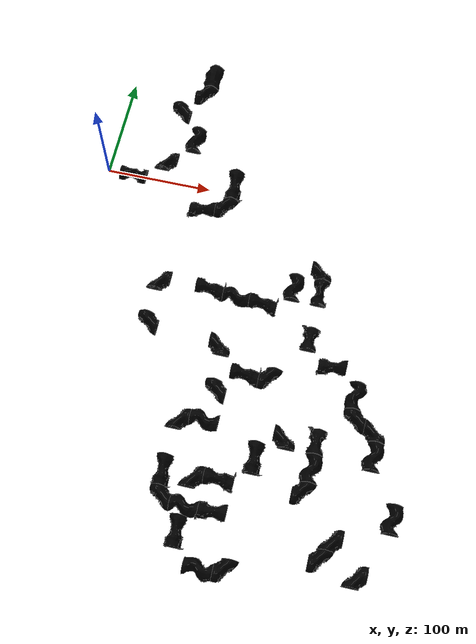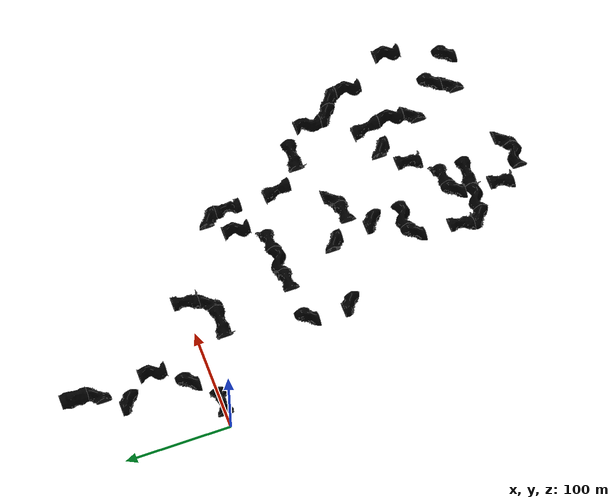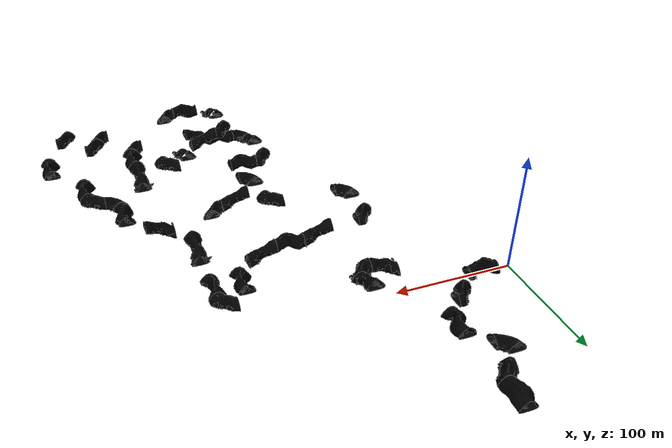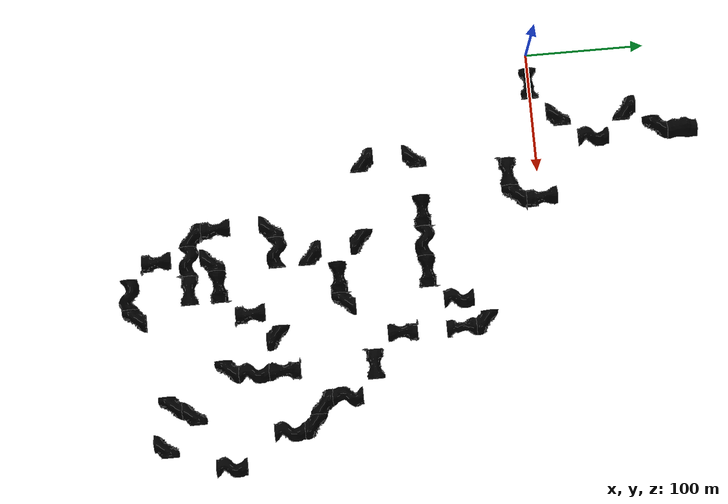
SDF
<sdf version="1.10">
 <world name="cave_circuit_02">
  <physics name="1ms" type="ode">
   <max_step_size>0.0040000000000000001</max_step_size>
   <real_time_factor>1</real_time_factor>
   <real_time_update_rate>1000</real_time_update_rate>
  </physics>
  <scene>
   <ambient>1 1 1 1</ambient>
   <background>1 1 1 1</background>
   <grid>false</grid>
   <origin_visual>false</origin_visual>
   <shadows>true</shadows>
  </scene>
  <plugin name="ignition::gazebo" filename="dummy">
   <level name="level0">
    <ref>tile_4</ref>
    <ref>cap_120</ref>
    <pose>25 -137.5 5.36225 0 0 0</pose>
    <geometry><box><size>93.75 725 150.725</size></box></geometry>
    <buffer>10</buffer>
   </level>
   <level name="level1">
    <ref>rescue_randy_1</ref>
    <pose>46.0079 -137.5 5.36225 0 0 0</pose>
    <geometry><box><size>93.75 725 150.725</size></box></geometry>
    <buffer>10</buffer>
   </level>
   <level name="level2">
    <ref>rope_1</ref>
    <pose>49.9811 -137.5 5.36225 0 0 0</pose>
    <geometry><box><size>93.75 725 150.725</size></box></geometry>
    <buffer>10</buffer>
   </level>
   <level name="level3">
    <ref>tile_2</ref>
    <ref>tile_14</ref>
    <ref>tile_20</ref>
    <ref>tile_40</ref>
    <ref>tile_45</ref>
    <ref>tile_60</ref>
    <pose>50 -137.5 5.36225 0 0 0</pose>
    <geometry><box><size>93.75 725 150.725</size></box></geometry>
    <buffer>10</buffer>
   </level>
   <level name="level4">
    <ref>tile_1</ref>
    <ref>tile_5</ref>
    <ref>tile_7</ref>
    <ref>tile_8</ref>
    <ref>tile_10</ref>
    <ref>tile_11</ref>
    <ref>tile_16</ref>
    <ref>tile_19</ref>
    <ref>tile_43</ref>
    <ref>tile_61</ref>
    <ref>tile_62</ref>
    <ref>tile_68</ref>
    <ref>cap_119</ref>
    <pose>75 -137.5 5.36225 0 0 0</pose>
    <geometry><box><size>93.75 725 150.725</size></box></geometry>
    <buffer>10</buffer>
   </level>
   <level name="level5">
    <ref>backpack_1</ref>
    <pose>79.2605 -137.5 5.36225 0 0 0</pose>
    <geometry><box><size>93.75 725 150.725</size></box></geometry>
    <buffer>10</buffer>
   </level>
   <level name="level6">
    <ref>rescue_randy_2</ref>
    <pose>98.4932 -137.5 5.36225 0 0 0</pose>
    <geometry><box><size>93.75 725 150.725</size></box></geometry>
    <buffer>10</buffer>
   </level>
   <level name="level7">
    <ref>tile_18</ref>
    <ref>tile_30</ref>
    <ref>tile_41</ref>
    <ref>tile_44</ref>
    <ref>cap_101</ref>
    <ref>tile_63</ref>
    <ref>tile_69</ref>
    <ref>tile_70</ref>
    <pose>100 -137.5 5.36225 0 0 0</pose>
    <geometry><box><size>93.75 725 150.725</size></box></geometry>
    <buffer>10</buffer>
   </level>
   <level name="level8">
    <ref>helmet_1</ref>
    <pose>113.364 -137.5 5.36225 0 0 0</pose>
    <geometry><box><size>93.75 725 150.725</size></box></geometry>
    <buffer>10</buffer>
   </level>
   <level name="level9">
    <ref>rope_2</ref>
    <pose>120.105 -137.5 5.36225 0 0 0</pose>
    <geometry><box><size>93.75 725 150.725</size></box></geometry>
    <buffer>10</buffer>
   </level>
   <level name="level10">
    <ref>cap_100</ref>
    <ref>tile_42</ref>
    <ref>tile_53</ref>
    <ref>tile_64</ref>
    <ref>tile_65</ref>
    <ref>tile_66</ref>
    <ref>tile_76</ref>
    <ref>tile_77</ref>
    <ref>tile_233</ref>
    <ref>tile_235</ref>
    <ref>tile_236</ref>
    <pose>125 -137.5 5.36225 0 0 0</pose>
    <geometry><box><size>93.75 725 150.725</size></box></geometry>
    <buffer>10</buffer>
   </level>
   <level name="level11">
    <ref>backpack_2</ref>
    <pose>131.134 -137.5 5.36225 0 0 0</pose>
    <geometry><box><size>93.75 725 150.725</size></box></geometry>
    <buffer>10</buffer>
   </level>
   <level name="level12">
    <ref>helmet_3</ref>
    <pose>148.017 -137.5 5.36225 0 0 0</pose>
    <geometry><box><size>93.75 725 150.725</size></box></geometry>
    <buffer>10</buffer>
   </level>
   <level name="level13">
    <ref>tile_21</ref>
    <ref>tile_51</ref>
    <ref>tile_52</ref>
    <ref>tile_78</ref>
    <ref>tile_79</ref>
    <ref>tile_80</ref>
    <ref>tile_95</ref>
    <ref>tile_230</ref>
    <ref>tile_234</ref>
    <ref>tile_238</ref>
    <pose>150 -137.5 5.36225 0 0 0</pose>
    <geometry><box><size>93.75 725 150.725</size></box></geometry>
    <buffer>10</buffer>
   </level>
   <level name="level14">
    <ref>phone_4</ref>
    <pose>151.461 -137.5 5.36225 0 0 0</pose>
    <geometry><box><size>93.75 725 150.725</size></box></geometry>
    <buffer>10</buffer>
   </level>
   <level name="level15">
    <ref>phone_2</ref>
    <pose>159.041 -137.5 5.36225 0 0 0</pose>
    <geometry><box><size>93.75 725 150.725</size></box></geometry>
    <buffer>10</buffer>
   </level>
   <level name="level16">
    <ref>tile_12</ref>
    <ref>tile_57</ref>
    <ref>tile_75</ref>
    <ref>tile_81</ref>
    <ref>tile_82</ref>
    <ref>tile_96</ref>
    <ref>cap_103</ref>
    <ref>tile_237</ref>
    <pose>175 -137.5 5.36225 0 0 0</pose>
    <geometry><box><size>93.75 725 150.725</size></box></geometry>
    <buffer>10</buffer>
   </level>
   <level name="level17">
    <ref>helmet_2</ref>
    <pose>197.497 -137.5 5.36225 0 0 0</pose>
    <geometry><box><size>93.75 725 150.725</size></box></geometry>
    <buffer>10</buffer>
   </level>
   <level name="level18">
    <ref>rescue_randy_4</ref>
    <pose>198.257 -137.5 5.36225 0 0 0</pose>
    <geometry><box><size>93.75 725 150.725</size></box></geometry>
    <buffer>10</buffer>
   </level>
   <level name="level19">
    <ref>tile_54</ref>
    <pose>199.853 -137.5 5.36225 0 0 0</pose>
    <geometry><box><size>93.75 725 150.725</size></box></geometry>
    <buffer>10</buffer>
   </level>
   <level name="level20">
    <ref>tile_13</ref>
    <ref>tile_23</ref>
    <ref>tile_29</ref>
    <ref>tile_55</ref>
    <ref>tile_56</ref>
    <ref>cap_102</ref>
    <ref>tile_73</ref>
    <ref>tile_74</ref>
    <ref>tile_83</ref>
    <ref>tile_84</ref>
    <ref>tile_93</ref>
    <ref>tile_94</ref>
    <pose>200 -137.5 5.36225 0 0 0</pose>
    <geometry><box><size>93.75 725 150.725</size></box></geometry>
    <buffer>10</buffer>
   </level>
   <level name="level21">
    <ref>rope_3</ref>
    <pose>200.187 -137.5 5.36225 0 0 0</pose>
    <geometry><box><size>93.75 725 150.725</size></box></geometry>
    <buffer>10</buffer>
   </level>
   <level name="level22">
    <ref>backpack_3</ref>
    <pose>207.649 -137.5 5.36225 0 0 0</pose>
    <geometry><box><size>93.75 725 150.725</size></box></geometry>
    <buffer>10</buffer>
   </level>
   <level name="level23">
    <ref>tile_24</ref>
    <ref>tile_67</ref>
    <ref>tile_71</ref>
    <ref>tile_72</ref>
    <ref>tile_85</ref>
    <ref>tile_87</ref>
    <ref>tile_89</ref>
    <ref>tile_91</ref>
    <ref>tile_102</ref>
    <ref>tile_229</ref>
    <pose>225 -137.5 5.36225 0 0 0</pose>
    <geometry><box><size>93.75 725 150.725</size></box></geometry>
    <buffer>10</buffer>
   </level>
   <level name="level24">
    <ref>phone_1</ref>
    <pose>228.47 -137.5 5.36225 0 0 0</pose>
    <geometry><box><size>93.75 725 150.725</size></box></geometry>
    <buffer>10</buffer>
   </level>
   <level name="level25">
    <ref>rescue_randy_3</ref>
    <pose>243.97 -137.5 5.36225 0 0 0</pose>
    <geometry><box><size>93.75 725 150.725</size></box></geometry>
    <buffer>10</buffer>
   </level>
   <level name="level26">
    <ref>helmet_4</ref>
    <pose>247.328 -137.5 5.36225 0 0 0</pose>
    <geometry><box><size>93.75 725 150.725</size></box></geometry>
    <buffer>10</buffer>
   </level>
   <level name="level27">
    <ref>backpack_4</ref>
    <pose>249.686 -137.5 5.36225 0 0 0</pose>
    <geometry><box><size>93.75 725 150.725</size></box></geometry>
    <buffer>10</buffer>
   </level>
   <level name="level28">
    <ref>tile_26</ref>
    <ref>tile_86</ref>
    <ref>tile_88</ref>
    <ref>tile_90</ref>
    <ref>tile_92</ref>
    <ref>tile_103</ref>
    <ref>cap_106</ref>
    <pose>250 -137.5 5.36225 0 0 0</pose>
    <geometry><box><size>93.75 725 150.725</size></box></geometry>
    <buffer>10</buffer>
   </level>
   <level name="level29">
    <ref>tile_50</ref>
    <ref>tile_97</ref>
    <ref>tile_98</ref>
    <ref>tile_105</ref>
    <ref>tile_106</ref>
    <pose>275 -137.5 5.36225 0 0 0</pose>
    <geometry><box><size>93.75 725 150.725</size></box></geometry>
    <buffer>10</buffer>
   </level>
   <level name="level30">
    <ref>tile_31</ref>
    <ref>tile_32</ref>
    <ref>cap_105</ref>
    <ref>tile_38</ref>
    <ref>tile_39</ref>
    <ref>tile_99</ref>
    <ref>tile_100</ref>
    <ref>tile_101</ref>
    <ref>tile_104</ref>
    <ref>tile_107</ref>
    <ref>tile_111</ref>
    <pose>300 -137.5 5.36225 0 0 0</pose>
    <geometry><box><size>93.75 725 150.725</size></box></geometry>
    <buffer>10</buffer>
   </level>
   <level name="level31">
    <ref>helmet_5</ref>
    <pose>304.779 -137.5 5.36225 0 0 0</pose>
    <geometry><box><size>93.75 725 150.725</size></box></geometry>
    <buffer>10</buffer>
   </level>
   <level name="level32">
    <ref>tile_108</ref>
    <ref>tile_109</ref>
    <ref>tile_110</ref>
    <ref>tile_113</ref>
    <ref>tile_114</ref>
    <pose>325 -137.5 5.36225 0 0 0</pose>
    <geometry><box><size>93.75 725 150.725</size></box></geometry>
    <buffer>10</buffer>
   </level>
   <level name="level33">
    <ref>phone_3</ref>
    <pose>331.114 -137.5 5.36225 0 0 0</pose>
    <geometry><box><size>93.75 725 150.725</size></box></geometry>
    <buffer>10</buffer>
   </level>
   <level name="level34">
    <ref>cap_104</ref>
    <pose>350 -137.5 5.36225 0 0 0</pose>
    <geometry><box><size>93.75 725 150.725</size></box></geometry>
    <buffer>10</buffer>
   </level>
   <level name="level35">
    <ref>cap_105</ref>
    <pose>187.5 -450 5.36225 0 0 0</pose>
    <geometry><box><size>425 93.75 150.725</size></box></geometry>
    <buffer>10</buffer>
   </level>
   <level name="level36">
    <ref>tile_32</ref>
    <pose>187.5 -425 5.36225 0 0 0</pose>
    <geometry><box><size>425 93.75 150.725</size></box></geometry>
    <buffer>10</buffer>
   </level>
   <level name="level37">
    <ref>tile_31</ref>
    <pose>187.5 -400 5.36225 0 0 0</pose>
    <geometry><box><size>425 93.75 150.725</size></box></geometry>
    <buffer>10</buffer>
   </level>
   <level name="level38">
    <ref>helmet_5</ref>
    <pose>187.5 -398.248 5.36225 0 0 0</pose>
    <geometry><box><size>425 93.75 150.725</size></box></geometry>
    <buffer>10</buffer>
   </level>
   <level name="level39">
    <ref>tile_38</ref>
    <pose>187.5 -375 5.36225 0 0 0</pose>
    <geometry><box><size>425 93.75 150.725</size></box></geometry>
    <buffer>10</buffer>
   </level>
   <level name="level40">
    <ref>phone_4</ref>
    <pose>187.5 -353.205 5.36225 0 0 0</pose>
    <geometry><box><size>425 93.75 150.725</size></box></geometry>
    <buffer>10</buffer>
   </level>
   <level name="level41">
    <ref>tile_39</ref>
    <ref>tile_51</ref>
    <ref>tile_55</ref>
    <ref>tile_57</ref>
    <ref>cap_106</ref>
    <pose>187.5 -350 5.36225 0 0 0</pose>
    <geometry><box><size>425 93.75 150.725</size></box></geometry>
    <buffer>10</buffer>
   </level>
   <level name="level42">
    <ref>backpack_4</ref>
    <pose>187.5 -339.741 5.36225 0 0 0</pose>
    <geometry><box><size>425 93.75 150.725</size></box></geometry>
    <buffer>10</buffer>
   </level>
   <level name="level43">
    <ref>tile_56</ref>
    <ref>tile_102</ref>
    <ref>tile_103</ref>
    <ref>tile_106</ref>
    <ref>tile_110</ref>
    <ref>tile_111</ref>
    <ref>tile_230</ref>
    <pose>187.5 -325 5.36225 0 0 0</pose>
    <geometry><box><size>425 93.75 150.725</size></box></geometry>
    <buffer>10</buffer>
   </level>
   <level name="level44">
    <ref>rope_3</ref>
    <pose>187.5 -318.128 5.36225 0 0 0</pose>
    <geometry><box><size>425 93.75 150.725</size></box></geometry>
    <buffer>10</buffer>
   </level>
   <level name="level45">
    <ref>tile_54</ref>
    <pose>187.5 -300.593 5.36225 0 0 0</pose>
    <geometry><box><size>425 93.75 150.725</size></box></geometry>
    <buffer>10</buffer>
   </level>
   <level name="level46">
    <ref>tile_52</ref>
    <ref>tile_53</ref>
    <ref>tile_104</ref>
    <ref>tile_105</ref>
    <ref>tile_113</ref>
    <ref>tile_237</ref>
    <ref>tile_238</ref>
    <pose>187.5 -300 5.36225 0 0 0</pose>
    <geometry><box><size>425 93.75 150.725</size></box></geometry>
    <buffer>10</buffer>
   </level>
   <level name="level47">
    <ref>rescue_randy_4</ref>
    <pose>187.5 -278.819 5.36225 0 0 0</pose>
    <geometry><box><size>425 93.75 150.725</size></box></geometry>
    <buffer>10</buffer>
   </level>
   <level name="level48">
    <ref>tile_90</ref>
    <ref>tile_91</ref>
    <ref>tile_94</ref>
    <ref>tile_95</ref>
    <ref>tile_96</ref>
    <ref>tile_101</ref>
    <ref>tile_114</ref>
    <ref>tile_236</ref>
    <pose>187.5 -275 5.36225 0 0 0</pose>
    <geometry><box><size>425 93.75 150.725</size></box></geometry>
    <buffer>10</buffer>
   </level>
   <level name="level49">
    <ref>tile_89</ref>
    <ref>tile_92</ref>
    <ref>tile_93</ref>
    <ref>tile_107</ref>
    <ref>tile_108</ref>
    <ref>tile_235</ref>
    <pose>187.5 -250 5.36225 0 0 0</pose>
    <geometry><box><size>425 93.75 150.725</size></box></geometry>
    <buffer>10</buffer>
   </level>
   <level name="level50">
    <ref>tile_82</ref>
    <ref>tile_83</ref>
    <ref>tile_85</ref>
    <ref>tile_88</ref>
    <ref>cap_103</ref>
    <ref>tile_100</ref>
    <ref>tile_109</ref>
    <ref>cap_104</ref>
    <ref>tile_233</ref>
    <ref>tile_234</ref>
    <pose>187.5 -225 5.36225 0 0 0</pose>
    <geometry><box><size>425 93.75 150.725</size></box></geometry>
    <buffer>10</buffer>
   </level>
   <level name="level51">
    <ref>phone_3</ref>
    <pose>187.5 -223.715 5.36225 0 0 0</pose>
    <geometry><box><size>425 93.75 150.725</size></box></geometry>
    <buffer>10</buffer>
   </level>
   <level name="level52">
    <ref>helmet_3</ref>
    <pose>187.5 -219.996 5.36225 0 0 0</pose>
    <geometry><box><size>425 93.75 150.725</size></box></geometry>
    <buffer>10</buffer>
   </level>
   <level name="level53">
    <ref>helmet_4</ref>
    <pose>187.5 -203.254 5.36225 0 0 0</pose>
    <geometry><box><size>425 93.75 150.725</size></box></geometry>
    <buffer>10</buffer>
   </level>
   <level name="level54">
    <ref>tile_80</ref>
    <ref>tile_81</ref>
    <ref>tile_84</ref>
    <ref>tile_86</ref>
    <ref>tile_87</ref>
    <ref>tile_98</ref>
    <ref>tile_99</ref>
    <pose>187.5 -200 5.36225 0 0 0</pose>
    <geometry><box><size>425 93.75 150.725</size></box></geometry>
    <buffer>10</buffer>
   </level>
   <level name="level55">
    <ref>phone_2</ref>
    <pose>187.5 -193.451 5.36225 0 0 0</pose>
    <geometry><box><size>425 93.75 150.725</size></box></geometry>
    <buffer>10</buffer>
   </level>
   <level name="level56">
    <ref>tile_74</ref>
    <ref>tile_75</ref>
    <ref>tile_79</ref>
    <ref>tile_97</ref>
    <pose>187.5 -175 5.36225 0 0 0</pose>
    <geometry><box><size>425 93.75 150.725</size></box></geometry>
    <buffer>10</buffer>
   </level>
   <level name="level57">
    <ref>backpack_3</ref>
    <pose>187.5 -156.007 5.36225 0 0 0</pose>
    <geometry><box><size>425 93.75 150.725</size></box></geometry>
    <buffer>10</buffer>
   </level>
   <level name="level58">
    <ref>tile_16</ref>
    <ref>tile_26</ref>
    <ref>tile_50</ref>
    <ref>tile_69</ref>
    <ref>tile_72</ref>
    <ref>tile_73</ref>
    <ref>tile_77</ref>
    <ref>tile_78</ref>
    <pose>187.5 -150 5.36225 0 0 0</pose>
    <geometry><box><size>425 93.75 150.725</size></box></geometry>
    <buffer>10</buffer>
   </level>
   <level name="level59">
    <ref>rescue_randy_3</ref>
    <pose>187.5 -144.242 5.36225 0 0 0</pose>
    <geometry><box><size>425 93.75 150.725</size></box></geometry>
    <buffer>10</buffer>
   </level>
   <level name="level60">
    <ref>tile_68</ref>
    <ref>tile_70</ref>
    <ref>tile_76</ref>
    <ref>tile_229</ref>
    <pose>187.5 -125 5.36225 0 0 0</pose>
    <geometry><box><size>425 93.75 150.725</size></box></geometry>
    <buffer>10</buffer>
   </level>
   <level name="level61">
    <ref>rescue_randy_2</ref>
    <pose>187.5 -120.989 5.36225 0 0 0</pose>
    <geometry><box><size>425 93.75 150.725</size></box></geometry>
    <buffer>10</buffer>
   </level>
   <level name="level62">
    <ref>tile_12</ref>
    <ref>tile_18</ref>
    <ref>tile_21</ref>
    <ref>tile_23</ref>
    <ref>tile_42</ref>
    <ref>tile_43</ref>
    <ref>tile_71</ref>
    <pose>187.5 -100 5.36225 0 0 0</pose>
    <geometry><box><size>425 93.75 150.725</size></box></geometry>
    <buffer>10</buffer>
   </level>
   <level name="level63">
    <ref>phone_1</ref>
    <pose>187.5 -99.1503 5.36225 0 0 0</pose>
    <geometry><box><size>425 93.75 150.725</size></box></geometry>
    <buffer>10</buffer>
   </level>
   <level name="level64">
    <ref>backpack_2</ref>
    <pose>187.5 -94.5749 5.36225 0 0 0</pose>
    <geometry><box><size>425 93.75 150.725</size></box></geometry>
    <buffer>10</buffer>
   </level>
   <level name="level65">
    <ref>tile_24</ref>
    <ref>tile_29</ref>
    <ref>tile_44</ref>
    <pose>187.5 -75 5.36225 0 0 0</pose>
    <geometry><box><size>425 93.75 150.725</size></box></geometry>
    <buffer>10</buffer>
   </level>
   <level name="level66">
    <ref>tile_13</ref>
    <ref>tile_14</ref>
    <ref>tile_62</ref>
    <ref>tile_63</ref>
    <ref>tile_67</ref>
    <pose>187.5 -50 5.36225 0 0 0</pose>
    <geometry><box><size>425 93.75 150.725</size></box></geometry>
    <buffer>10</buffer>
   </level>
   <level name="level67">
    <ref>rescue_randy_1</ref>
    <pose>187.5 -48.2151 5.36225 0 0 0</pose>
    <geometry><box><size>425 93.75 150.725</size></box></geometry>
    <buffer>10</buffer>
   </level>
   <level name="level68">
    <ref>helmet_2</ref>
    <pose>187.5 -43.9886 5.36225 0 0 0</pose>
    <geometry><box><size>425 93.75 150.725</size></box></geometry>
    <buffer>10</buffer>
   </level>
   <level name="level69">
    <ref>tile_41</ref>
    <ref>tile_45</ref>
    <ref>tile_61</ref>
    <ref>tile_64</ref>
    <ref>cap_102</ref>
    <pose>187.5 -25 5.36225 0 0 0</pose>
    <geometry><box><size>425 93.75 150.725</size></box></geometry>
    <buffer>10</buffer>
   </level>
   <level name="level70">
    <ref>backpack_1</ref>
    <pose>187.5 -3.34871 5.36225 0 0 0</pose>
    <geometry><box><size>425 93.75 150.725</size></box></geometry>
    <buffer>10</buffer>
   </level>
   <level name="level71">
    <ref>tile_4</ref>
    <ref>tile_19</ref>
    <ref>tile_40</ref>
    <ref>tile_66</ref>
    <pose>187.5 0 5.36225 0 0 0</pose>
    <geometry><box><size>425 93.75 150.725</size></box></geometry>
    <buffer>10</buffer>
   </level>
   <level name="level72">
    <ref>rope_2</ref>
    <pose>187.5 22.381 5.36225 0 0 0</pose>
    <geometry><box><size>425 93.75 150.725</size></box></geometry>
    <buffer>10</buffer>
   </level>
   <level name="level73">
    <ref>tile_1</ref>
    <ref>tile_2</ref>
    <ref>cap_101</ref>
    <ref>tile_65</ref>
    <pose>187.5 25 5.36225 0 0 0</pose>
    <geometry><box><size>425 93.75 150.725</size></box></geometry>
    <buffer>10</buffer>
   </level>
   <level name="level74">
    <ref>tile_11</ref>
    <pose>187.5 50 5.36225 0 0 0</pose>
    <geometry><box><size>425 93.75 150.725</size></box></geometry>
    <buffer>10</buffer>
   </level>
   <level name="level75">
    <ref>tile_7</ref>
    <ref>tile_60</ref>
    <pose>187.5 75 5.36225 0 0 0</pose>
    <geometry><box><size>425 93.75 150.725</size></box></geometry>
    <buffer>10</buffer>
   </level>
   <level name="level76">
    <ref>tile_10</ref>
    <ref>tile_20</ref>
    <ref>cap_120</ref>
    <pose>187.5 100 5.36225 0 0 0</pose>
    <geometry><box><size>425 93.75 150.725</size></box></geometry>
    <buffer>10</buffer>
   </level>
   <level name="level77">
    <ref>rope_1</ref>
    <pose>187.5 101.591 5.36225 0 0 0</pose>
    <geometry><box><size>425 93.75 150.725</size></box></geometry>
    <buffer>10</buffer>
   </level>
   <level name="level78">
    <ref>tile_5</ref>
    <pose>187.5 125 5.36225 0 0 0</pose>
    <geometry><box><size>425 93.75 150.725</size></box></geometry>
    <buffer>10</buffer>
   </level>
   <level name="level79">
    <ref>helmet_1</ref>
    <pose>187.5 149.606 5.36225 0 0 0</pose>
    <geometry><box><size>425 93.75 150.725</size></box></geometry>
    <buffer>10</buffer>
   </level>
   <level name="level80">
    <ref>cap_100</ref>
    <ref>tile_8</ref>
    <ref>tile_30</ref>
    <pose>187.5 150 5.36225 0 0 0</pose>
    <geometry><box><size>425 93.75 150.725</size></box></geometry>
    <buffer>10</buffer>
   </level>
   <level name="level81">
    <ref>cap_119</ref>
    <pose>187.5 175 5.36225 0 0 0</pose>
    <geometry><box><size>425 93.75 150.725</size></box></geometry>
    <buffer>10</buffer>
   </level>
  </plugin>
  <gravity>0 0 -9.8000000000000007</gravity>
  <magnetic_field>5.5644999999999998e-06 2.2875799999999999e-05 -4.2388400000000002e-05</magnetic_field>
  <atmosphere type="adiabatic"/>
  <include>
   <uri>https://fuel.ignitionrobotics.org/1.0/OpenRobotics/models/Cave Corner 02 Lights Type B</uri>
   <name>tile_2</name>
   <pose>50 25 0 0 0 3.1415899999999999</pose>
  </include>
  <include>
   <uri>https://fuel.ignitionrobotics.org/1.0/OpenRobotics/models/Cave Straight 02 Lights Type B</uri>
   <name>tile_4</name>
   <pose>25 0 0 0 0 -1.5708000000000006</pose>
  </include>
  <include>
   <uri>https://fuel.ignitionrobotics.org/1.0/OpenRobotics/models/Cave Straight 04 Type B</uri>
   <name>tile_5</name>
   <pose>75 125 0 0 0 0</pose>
  </include>
  <include>
   <uri>https://fuel.ignitionrobotics.org/1.0/OpenRobotics/models/Cave Corner 02 Type B</uri>
   <name>tile_10</name>
   <pose>75 100 0 0 0 -1.7484600000000098e-07</pose>
  </include>
  <include>
   <uri>https://fuel.ignitionrobotics.org/1.0/OpenRobotics/models/Cave Straight 03 Type B</uri>
   <name>tile_11</name>
   <pose>75 50 0 0 0 0</pose>
  </include>
  <include>
   <uri>https://fuel.ignitionrobotics.org/1.0/OpenRobotics/models/Cave Elevation Type B</uri>
   <name>tile_12</name>
   <pose>175 -100 -20 0 0 -1.5708000000000006</pose>
  </include>
  <include>
   <uri>https://fuel.ignitionrobotics.org/1.0/OpenRobotics/models/Cave Corner 02 Type B</uri>
   <name>tile_16</name>
   <pose>75 -150 0 0 0 -1.5708000000000006</pose>
  </include>
  <include>
   <uri>https://fuel.ignitionrobotics.org/1.0/OpenRobotics/models/Cave Straight 03 Type B</uri>
   <name>tile_21</name>
   <pose>150 -100 -10 0 0 -1.5708000000000006</pose>
  </include>
  <include>
   <uri>https://fuel.ignitionrobotics.org/1.0/OpenRobotics/models/Cave Straight 02 Type B</uri>
   <name>tile_24</name>
   <pose>225 -75 -20 0 0 3.1415899999999999</pose>
  </include>
  <include>
   <uri>https://fuel.ignitionrobotics.org/1.0/OpenRobotics/models/Cave Elevation Lights Type B</uri>
   <name>tile_26</name>
   <pose>250 -150 -10 0 0 1.5708000000000006</pose>
  </include>
  <include>
   <uri>https://fuel.ignitionrobotics.org/1.0/OpenRobotics/models/Cave Straight 03 Type B</uri>
   <name>tile_29</name>
   <pose>200 -75 -20 0 0 -1.7484600000000098e-07</pose>
  </include>
  <include>
   <uri>https://fuel.ignitionrobotics.org/1.0/OpenRobotics/models/Cave Elevation Lights Type B</uri>
   <name>tile_41</name>
   <pose>100 -25 0 0 0 1.5708000000000006</pose>
  </include>
  <include>
   <uri>https://fuel.ignitionrobotics.org/1.0/OpenRobotics/models/Cave Elevation Type B</uri>
   <name>tile_42</name>
   <pose>125 -100 -10 0 0 -1.5708000000000006</pose>
  </include>
  <include>
   <uri>https://fuel.ignitionrobotics.org/1.0/OpenRobotics/models/Cave Corner 02 Lights Type B</uri>
   <name>tile_43</name>
   <pose>75 -100 0 0 0 3.1415899999999999</pose>
  </include>
  <include>
   <uri>https://fuel.ignitionrobotics.org/1.0/OpenRobotics/models/Cave Corner 02 Type B</uri>
   <name>tile_53</name>
   <pose>125 -300 -10 0 0 -1.5708000000000006</pose>
  </include>
  <include>
   <uri>https://fuel.ignitionrobotics.org/1.0/OpenRobotics/models/Cave Corner 02 Lights Type B</uri>
   <name>tile_55</name>
   <pose>200 -350 0 0 0 -3.4969100000000723e-07</pose>
  </include>
  <include>
   <uri>https://fuel.ignitionrobotics.org/1.0/OpenRobotics/models/Cave Straight 03 Type B</uri>
   <name>tile_57</name>
   <pose>175 -350 0 0 0 1.5708000000000006</pose>
  </include>
  <include>
   <uri>https://fuel.ignitionrobotics.org/1.0/OpenRobotics/models/Cave Corner 02 Type B</uri>
   <name>tile_60</name>
   <pose>50 75 0 0 0 -1.5708000000000006</pose>
  </include>
  <include>
   <uri>https://fuel.ignitionrobotics.org/1.0/OpenRobotics/models/Cave Corner 02 Lights Type B</uri>
   <name>tile_64</name>
   <pose>125 -25 10 0 0 -3.4969100000000723e-07</pose>
  </include>
  <include>
   <uri>https://fuel.ignitionrobotics.org/1.0/OpenRobotics/models/Cave Elevation Type B</uri>
   <name>tile_66</name>
   <pose>125 0 10 0 0 -3.1415899999999999</pose>
  </include>
  <include>
   <uri>https://fuel.ignitionrobotics.org/1.0/OpenRobotics/models/Cave Corner 02 Type B</uri>
   <name>tile_67</name>
   <pose>225 -50 -20 0 0 1.5708000000000006</pose>
  </include>
  <include>
   <uri>https://fuel.ignitionrobotics.org/1.0/OpenRobotics/models/Cave Corner 02 Lights Type B</uri>
   <name>tile_74</name>
   <pose>200 -175 -10 0 0 -3.4969100000000723e-07</pose>
  </include>
  <include>
   <uri>https://fuel.ignitionrobotics.org/1.0/OpenRobotics/models/Cave Elevation Lights Type B</uri>
   <name>tile_75</name>
   <pose>175 -175 -10 0 0 -1.5708000000000006</pose>
  </include>
  <include>
   <uri>https://fuel.ignitionrobotics.org/1.0/OpenRobotics/models/Cave Corner 02 Lights Type B</uri>
   <name>tile_78</name>
   <pose>150 -150 0 0 0 1.5708000000000006</pose>
  </include>
  <include>
   <uri>https://fuel.ignitionrobotics.org/1.0/OpenRobotics/models/Cave Corner 02 Type B</uri>
   <name>tile_80</name>
   <pose>150 -200 0 0 0 -1.5708000000000006</pose>
  </include>
  <include>
   <uri>https://fuel.ignitionrobotics.org/1.0/OpenRobotics/models/Cave Corner 02 Lights Type B</uri>
   <name>tile_85</name>
   <pose>225 -225 10 0 0 1.5708000000000006</pose>
  </include>
  <include>
   <uri>https://fuel.ignitionrobotics.org/1.0/OpenRobotics/models/Cave Elevation Lights Type B</uri>
   <name>tile_88</name>
   <pose>250 -225 0 0 0 -3.4969100000000723e-07</pose>
  </include>
  <include>
   <uri>https://fuel.ignitionrobotics.org/1.0/OpenRobotics/models/Cave Corner 02 Lights Type B</uri>
   <name>tile_90</name>
   <pose>250 -275 10 0 0 -3.4969100000000723e-07</pose>
  </include>
  <include>
   <uri>https://fuel.ignitionrobotics.org/1.0/OpenRobotics/models/Cave Straight 03 Type B</uri>
   <name>tile_92</name>
   <pose>250 -250 10 0 0 0</pose>
  </include>
  <include>
   <uri>https://fuel.ignitionrobotics.org/1.0/OpenRobotics/models/Cave Elevation Type B</uri>
   <name>tile_93</name>
   <pose>200 -250 0 0 0 3.1415899999999999</pose>
  </include>
  <include>
   <uri>https://fuel.ignitionrobotics.org/1.0/OpenRobotics/models/Cave Corner 02 Type B</uri>
   <name>tile_95</name>
   <pose>150 -275 10 0 0 3.1415899999999999</pose>
  </include>
  <include>
   <uri>https://fuel.ignitionrobotics.org/1.0/OpenRobotics/models/Cave Elevation Type B</uri>
   <name>tile_96</name>
   <pose>175 -275 0 0 0 -1.5708000000000006</pose>
  </include>
  <include>
   <uri>https://fuel.ignitionrobotics.org/1.0/OpenRobotics/models/Cave Straight 03 Type B</uri>
   <name>tile_97</name>
   <pose>275 -175 0 0 0 3.1415899999999999</pose>
  </include>
  <include>
   <uri>https://fuel.ignitionrobotics.org/1.0/OpenRobotics/models/Cave Corner 02 Type B</uri>
   <name>tile_98</name>
   <pose>275 -200 0 0 0 -1.5708000000000006</pose>
  </include>
  <include>
   <uri>https://fuel.ignitionrobotics.org/1.0/OpenRobotics/models/Cave Corner 02 Type B</uri>
   <name>tile_99</name>
   <pose>300 -200 0 0 0 1.5708000000000006</pose>
  </include>
  <include>
   <uri>https://fuel.ignitionrobotics.org/1.0/OpenRobotics/models/Cave Straight 03 Type B</uri>
   <name>tile_100</name>
   <pose>300 -225 0 0 0 0</pose>
  </include>
  <include>
   <uri>https://fuel.ignitionrobotics.org/1.0/OpenRobotics/models/Cave Corner 02 Lights Type B</uri>
   <name>tile_105</name>
   <pose>275 -300 0 0 0 3.1415899999999999</pose>
  </include>
  <include>
   <uri>https://fuel.ignitionrobotics.org/1.0/OpenRobotics/models/Cave Corner 02 Lights Type B</uri>
   <name>tile_106</name>
   <pose>275 -325 0 0 0 0</pose>
  </include>
  <include>
   <uri>https://fuel.ignitionrobotics.org/1.0/OpenRobotics/models/Cave Corner 02 Lights Type B</uri>
   <name>tile_111</name>
   <pose>300 -325 0 0 0 3.1415899999999999</pose>
  </include>
  <include>
   <uri>https://fuel.ignitionrobotics.org/1.0/OpenRobotics/models/Cave Straight 03 Type B</uri>
   <name>tile_114</name>
   <pose>325 -275 0 0 0 0</pose>
  </include>
  <include>
   <uri>https://fuel.ignitionrobotics.org/1.0/OpenRobotics/models/Cave Elevation Type B</uri>
   <name>tile_229</name>
   <pose>225 -125 -20 0 0 -3.4969100000000723e-07</pose>
  </include>
  <include>
   <uri>https://fuel.ignitionrobotics.org/1.0/OpenRobotics/models/Cave Elevation Type B</uri>
   <name>tile_230</name>
   <pose>150 -325 0 0 0 3.1415899999999999</pose>
  </include>
  <include>
   <uri>https://fuel.ignitionrobotics.org/1.0/OpenRobotics/models/Cave Corner 02 Type B</uri>
   <name>tile_233</name>
   <pose>125 -225 0 0 0 3.1415899999999999</pose>
  </include>
  <include>
   <uri>https://fuel.ignitionrobotics.org/1.0/OpenRobotics/models/Cave Straight 03 Type B</uri>
   <name>tile_234</name>
   <pose>150 -225 0 0 0 -1.5708000000000006</pose>
  </include>
  <include>
   <uri>https://fuel.ignitionrobotics.org/1.0/OpenRobotics/models/Cave Elevation Type B</uri>
   <name>tile_236</name>
   <pose>125 -275 -10 0 0 3.1415899999999999</pose>
  </include>
  <include>
   <uri>https://fuel.ignitionrobotics.org/1.0/OpenRobotics/models/Cave Elevation Type B</uri>
   <name>tile_237</name>
   <pose>175 -300 -10 0 0 1.5708000000000006</pose>
  </include>
  <include>
   <uri>https://fuel.ignitionrobotics.org/1.0/OpenRobotics/models/Cave Straight 03 Type B</uri>
   <name>tile_238</name>
   <pose>150 -300 -10 0 0 -1.5708000000000006</pose>
  </include>
  <light name="sun" type="directional">
   <pose>0 0 10 0 0 0</pose>
   <intensity>1</intensity>
   <direction>-0.5 0.10000000000000001 -0.90000000000000002</direction>
   <diffuse>0.800000012 0.800000012 0.800000012 1</diffuse>
   <specular>0.800000012 0.800000012 0.800000012 1</specular>
   <attenuation>
    <range>1000</range>
    <linear>0.01</linear>
    <constant>0.90000000000000002</constant>
    <quadratic>0.001</quadratic>
   </attenuation>
   <spot><inner_angle>0</inner_angle><outer_angle>0</outer_angle><falloff>0</falloff></spot>
  </light>
 </world>
</sdf>

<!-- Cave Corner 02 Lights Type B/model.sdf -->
<sdf version="1.6">
  <model name="Cave Corner 02 Lights Type B">
    <include>
      <name>cave_corner_02</name>
      <uri>model://Cave Corner 02 Type B</uri>
    </include>
    <static>true</static>
    <link name="lights">
      <light name="spot_light1" type="spot">
        <pose>-2 6.0 3.5 0 0 0</pose>
        <diffuse>0 0 0 1</diffuse>
        <specular>0 0 0 1</specular>
        <attenuation>
          <range>20</range>
          <linear>0.2</linear>
          <constant>0.5</constant>
          <quadratic>0.02</quadratic>
        </attenuation>
        <spot>
          <inner_angle>2.0</inner_angle>
          <outer_angle>3.1</outer_angle>
          <falloff>1.0</falloff>
        </spot>
        <cast_shadows>false</cast_shadows>
      </light>

      <light name="spot_light2" type="spot">
        <pose>-6.5 -.25 4.5 0 0 0</pose>
        <diffuse>0 0 0 1</diffuse>
        <specular>0 0 0 1</specular>
        <attenuation>
          <range>20</range>
          <linear>0.2</linear>
          <constant>0.5</constant>
          <quadratic>0.02</quadratic>
        </attenuation>
        <spot>
          <inner_angle>2.0</inner_angle>
          <outer_angle>3.1</outer_angle>
          <falloff>1.0</falloff>
        </spot>
        <cast_shadows>false</cast_shadows>
      </light>
    </link>
  </model>
</sdf>

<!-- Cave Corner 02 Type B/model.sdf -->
<sdf version="1.6">
  <model name="Cave Corner 02 Type B">
    <static>true</static>
    <link name="base_link">
      <collision name="collision">
        <pose>0 0 0 0 0 0</pose>
        <geometry>
          <mesh>
            <uri>model://cave_corner_02/meshes/cavecorner02.dae</uri>
            <scale>1.005 1.005 1.0</scale>
          </mesh>
        </geometry>
      </collision>
      <visual name="CaveWall_visual">
        <geometry>
          <mesh>
            <uri>model://cave_corner_02/meshes/cavecorner02.dae</uri>
            <submesh>
              <name>CaveWall</name>
              <center>false</center>
            </submesh>
            <scale>1.005 1.005 1.0</scale>
          </mesh>
        </geometry>
        <material>
          <diffuse>0 0 0 1</diffuse>
          <specular>0 0 0 1</specular>
          <pbr>
            <metal>
              <albedo_map>model://cave_corner_02/materials/textures/CaveWall_Albedo.png</albedo_map>
              <normal_map>model://cave_corner_02/materials/textures/CaveWall_Normal.png</normal_map>
              <roughness_map>model://cave_corner_02/materials/textures/CaveWall_Roughness.png</roughness_map>
            </metal>
          </pbr>

          <script>
            <uri>model://cave_corner_02/materials/scripts/</uri>
            <uri>model://cave_corner_02/materials/textures/</uri>
            <name>CaveTile/CaveWall_Diffuse</name>
          </script>
        </material>
      </visual>
      <visual name="StriatedRock_visual">
        <geometry>
          <mesh>
            <uri>model://cave_corner_02/meshes/cavecorner02.dae</uri>
            <submesh>
              <name>StriatedRock</name>
              <center>false</center>
            </submesh>
            <scale>1.005 1.005 1.0</scale>
          </mesh>
        </geometry>
        <material>
          <diffuse>0 0 0 1</diffuse>
          <specular>0 0 0 1</specular>
          <pbr>
            <metal>
              <albedo_map>model://cave_corner_02/materials/textures/StriatedRock_Albedo.png</albedo_map>
              <normal_map>model://cave_corner_02/materials/textures/StriatedRock_Normal.png</normal_map>
              <roughness_map>model://cave_corner_02/materials/textures/StriatedRock_Roughness.png</roughness_map>
            </metal>
          </pbr>

          <script>
            <uri>model://cave_corner_02/materials/scripts/</uri>
            <uri>model://cave_corner_02/materials/textures/</uri>
            <name>CaveTile/StriatedRock_Diffuse</name>
          </script>
        </material>
      </visual>
      <visual name="RockPile_visual">
        <geometry>
          <mesh>
            <uri>model://cave_corner_02/meshes/cavecorner02.dae</uri>
            <submesh>
              <name>RockPile</name>
              <center>false</center>
            </submesh>
            <scale>1.005 1.005 1.0</scale>
          </mesh>
        </geometry>
        <material>
          <diffuse>0 0 0 1</diffuse>
          <specular>0 0 0 1</specular>
          <pbr>
            <metal>
              <albedo_map>model://cave_corner_02/materials/textures/RockPile_Albedo.png</albedo_map>
              <normal_map>model://cave_corner_02/materials/textures/RockPile_Normal.png</normal_map>
              <roughness_map>model://cave_corner_02/materials/textures/RockPile_Roughness.png</roughness_map>
            </metal>
          </pbr>

          <script>
            <uri>model://cave_corner_02/materials/scripts/</uri>
            <uri>model://cave_corner_02/materials/textures/</uri>
            <name>CaveTile/RockPile_Diffuse</name>
          </script>
        </material>
      </visual>
    </link>
  </model>
</sdf>

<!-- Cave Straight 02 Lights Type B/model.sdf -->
<sdf version="1.6">
  <model name="Cave Straight 02 Lights Type B">
    <include>
      <name>cave_straight_02</name>
      <uri>model://Cave Straight 02 Type B</uri>
    </include>
    <static>true</static>
    <link name="lights">
      <light name="spot_light1" type="spot">
        <pose>0 5.0 3.5 0 0 0</pose>
        <diffuse>0 0 0 1</diffuse>
        <specular>0 0 0 1</specular>
        <attenuation>
          <range>20</range>
          <linear>0.2</linear>
          <constant>0.5</constant>
          <quadratic>0.02</quadratic>
        </attenuation>
        <spot>
          <inner_angle>2.0</inner_angle>
          <outer_angle>3.1</outer_angle>
          <falloff>1.0</falloff>
        </spot>
        <cast_shadows>false</cast_shadows>
      </light>

      <light name="spot_light2" type="spot">
        <pose>0 -5.5 4.5 0 0 0</pose>
        <diffuse>0 0 0 1</diffuse>
        <specular>0 0 0 1</specular>
        <attenuation>
          <range>20</range>
          <linear>0.2</linear>
          <constant>0.5</constant>
          <quadratic>0.02</quadratic>
        </attenuation>
        <spot>
          <inner_angle>2.0</inner_angle>
          <outer_angle>3.1</outer_angle>
          <falloff>1.0</falloff>
        </spot>
        <cast_shadows>false</cast_shadows>
      </light>
    </link>
  </model>
</sdf>

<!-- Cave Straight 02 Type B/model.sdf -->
<sdf version="1.6">
  <model name="Cave Straight 02 Type B">
    <static>true</static>
    <link name="base_link">
      <collision name="collision">
        <pose>0 0 0 0 0 0</pose>
        <geometry>
          <mesh>
            <uri>model://Cave Straight 02 Type B/meshes/cavestraight02.dae</uri>
            <scale>1.005 1.005 1.0</scale>
          </mesh>
        </geometry>
      </collision>
      <visual name="StriatedRock_visual">
        <geometry>
          <mesh>
            <uri>model://Cave Straight 02 Type B/meshes/cavestraight02.dae</uri>
            <scale>1.005 1.005 1.0</scale>
            <submesh>
              <name>StriatedRock</name>
              <center>false</center>
            </submesh>
          </mesh>
        </geometry>
        <material>
          <diffuse>0 0 0 1</diffuse>
          <specular>0 0 0 1</specular>
          <pbr>
            <metal>
              <albedo_map>model://Cave Straight 02 Type B/materials/textures/StriatedRock_Albedo.png</albedo_map>
              <normal_map>model://Cave Straight 02 Type B/materials/textures/StriatedRock_Normal.png</normal_map>
              <roughness_map>model://Cave Straight 02 Type B/materials/textures/StriatedRock_Roughness.png</roughness_map>
            </metal>
          </pbr>

          <script>
            <uri>model://Cave Straight 02 Type B/materials/scripts/</uri>
            <uri>model://Cave Straight 02 Type B/materials/textures/</uri>
            <name>CaveTile/StriatedRock_Diffuse</name>
          </script>
        </material>
      </visual>
      <visual name="RockPile_visual">
        <geometry>
          <mesh>
            <uri>model://Cave Straight 02 Type B/meshes/cavestraight02.dae</uri>
            <scale>1.005 1.005 1.0</scale>
            <submesh>
              <name>RockPile</name>
              <center>false</center>
            </submesh>
          </mesh>
        </geometry>
        <material>
          <diffuse>0 0 0 1</diffuse>
          <specular>0 0 0 1</specular>
          <pbr>
            <metal>
              <albedo_map>model://Cave Straight 02 Type B/materials/textures/RockPile_Albedo.png</albedo_map>
              <normal_map>model://Cave Straight 02 Type B/materials/textures/RockPile_Normal.png</normal_map>
              <roughness_map>model://Cave Straight 02 Type B/materials/textures/RockPile_Roughness.png</roughness_map>
            </metal>
          </pbr>

          <script>
            <uri>model://Cave Straight 02 Type B/materials/scripts/</uri>
            <uri>model://Cave Straight 02 Type B/materials/textures/</uri>
            <name>CaveTile/RockPile_Diffuse</name>
          </script>
        </material>
      </visual>
      <visual name="CaveWall_visual">
        <geometry>
          <mesh>
            <uri>model://Cave Straight 02 Type B/meshes/cavestraight02.dae</uri>
            <scale>1.005 1.005 1.0</scale>
            <submesh>
              <name>CaveWall</name>
              <center>false</center>
            </submesh>
          </mesh>
        </geometry>
        <material>
          <diffuse>0 0 0 1</diffuse>
          <specular>0 0 0 1</specular>
          <pbr>
            <metal>
              <albedo_map>model://Cave Straight 02 Type B/materials/textures/CaveWall_Albedo.png</albedo_map>
              <normal_map>model://Cave Straight 02 Type B/materials/textures/CaveWall_Normal.png</normal_map>
              <roughness_map>model://Cave Straight 02 Type B/materials/textures/CaveWall_Roughness.png</roughness_map>
            </metal>
          </pbr>

          <script>
            <uri>model://Cave Straight 02 Type B/materials/scripts/</uri>
            <uri>model://Cave Straight 02 Type B/materials/textures/</uri>
            <name>CaveTile/CaveWall_Diffuse</name>
          </script>
        </material>
      </visual>
    </link>
  </model>
</sdf>

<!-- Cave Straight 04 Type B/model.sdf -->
<sdf version="1.6">
  <model name="Cave Straight 04 Type B">
    <static>true</static>
    <link name="base_link">
      <collision name="collision">
        <pose>0 0 0 0 0 0</pose>
        <geometry>
          <mesh>
            <uri>model://Cave Straight 04 Type B/meshes/cavestraight04.dae</uri>
            <scale>1.0 1.0 1.0</scale>
          </mesh>
        </geometry>
      </collision>
      <visual name="StriatedRock_visual">
        <geometry>
          <mesh>
            <uri>model://Cave Straight 04 Type B/meshes/cavestraight04.dae</uri>
            <submesh>
              <name>StriatedRock</name>
              <center>false</center>
            </submesh>
          </mesh>
        </geometry>
        <material>
          <diffuse>0 0 0 1</diffuse>
          <specular>0 0 0 1</specular>
          <pbr>
            <metal>
              <albedo_map>model://Cave Straight 04 Type B/materials/textures/StriatedRock_Albedo.png</albedo_map>
              <normal_map>model://Cave Straight 04 Type B/materials/textures/StriatedRock_Normal.png</normal_map>
              <roughness_map>model://Cave Straight 04 Type B/materials/textures/StriatedRock_Roughness.png</roughness_map>
            </metal>
          </pbr>

          <script>
            <uri>model://Cave Straight 04 Type B/materials/scripts/</uri>
            <uri>model://Cave Straight 04 Type B/materials/textures/</uri>
            <name>CaveTile/StriatedRock_Diffuse</name>
          </script>
        </material>
      </visual>
      <visual name="RockPile_visual">
        <geometry>
          <mesh>
            <uri>model://Cave Straight 04 Type B/meshes/cavestraight04.dae</uri>
            <submesh>
              <name>RockPile</name>
              <center>false</center>
            </submesh>
          </mesh>
        </geometry>
        <material>
          <diffuse>0 0 0 1</diffuse>
          <specular>0 0 0 1</specular>
          <pbr>
            <metal>
              <albedo_map>model://Cave Straight 04 Type B/materials/textures/RockPile_Albedo.png</albedo_map>
              <normal_map>model://Cave Straight 04 Type B/materials/textures/RockPile_Normal.png</normal_map>
              <roughness_map>model://Cave Straight 04 Type B/materials/textures/RockPile_Roughness.png</roughness_map>
            </metal>
          </pbr>

          <script>
            <uri>model://Cave Straight 04 Type B/materials/scripts/</uri>
            <uri>model://Cave Straight 04 Type B/materials/textures/</uri>
            <name>CaveTile/RockPile_Diffuse</name>
          </script>
        </material>
      </visual>
      <visual name="CaveWall_visual">
        <geometry>
          <mesh>
            <uri>model://Cave Straight 04 Type B/meshes/cavestraight04.dae</uri>
            <submesh>
              <name>CaveWall</name>
              <center>false</center>
            </submesh>
          </mesh>
        </geometry>
        <material>
          <diffuse>0 0 0 1</diffuse>
          <specular>0 0 0 1</specular>
          <pbr>
            <metal>
              <albedo_map>model://Cave Straight 04 Type B/materials/textures/CaveWall_Albedo.png</albedo_map>
              <normal_map>model://Cave Straight 04 Type B/materials/textures/CaveWall_Normal.png</normal_map>
              <roughness_map>model://Cave Straight 04 Type B/materials/textures/CaveWall_Roughness.png</roughness_map>
            </metal>
          </pbr>

          <script>
            <uri>model://Cave Straight 04 Type B/materials/scripts/</uri>
            <uri>model://Cave Straight 04 Type B/materials/textures/</uri>
            <name>CaveTile/CaveWall_Diffuse</name>
          </script>
        </material>
      </visual>
    </link>
  </model>
</sdf>

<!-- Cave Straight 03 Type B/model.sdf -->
<sdf version="1.6">
  <model name="Cave Straight 03 Type B">
    <static>true</static>
    <link name="base_link">
      <collision name="collision">
        <pose>0 0 0 0 0 0</pose>
        <geometry>
          <mesh>
            <uri>model://Cave Straight 03 Type B/meshes/cavestraight03.dae</uri>
            <scale>1.005 1.005 1.0</scale>
          </mesh>
        </geometry>
      </collision>
      <visual name="StriatedRock_visual">
        <geometry>
          <mesh>
            <uri>model://Cave Straight 03 Type B/meshes/cavestraight03.dae</uri>
            <submesh>
              <name>StriatedRock</name>
              <center>false</center>
            </submesh>
            <scale>1.005 1.005 1.0</scale>
          </mesh>
        </geometry>
        <material>
          <diffuse>0 0 0 1</diffuse>
          <specular>0 0 0 1</specular>
          <pbr>
            <metal>
              <albedo_map>model://Cave Straight 03 Type B/materials/textures/StriatedRock_Albedo.png</albedo_map>
              <normal_map>model://Cave Straight 03 Type B/materials/textures/StriatedRock_Normal.png</normal_map>
              <roughness_map>model://Cave Straight 03 Type B/materials/textures/StriatedRock_Roughness.png</roughness_map>
            </metal>
          </pbr>

          <script>
            <uri>model://Cave Straight 03 Type B/materials/scripts/</uri>
            <uri>model://Cave Straight 03 Type B/materials/textures/</uri>
            <name>CaveTile/StriatedRock_Diffuse</name>
          </script>
        </material>
      </visual>
      <visual name="RockPile_visual">
        <geometry>
          <mesh>
            <uri>model://Cave Straight 03 Type B/meshes/cavestraight03.dae</uri>
            <submesh>
              <name>RockPile</name>
              <center>false</center>
            </submesh>
            <scale>1.005 1.005 1.0</scale>
          </mesh>
        </geometry>
        <material>
          <diffuse>0 0 0 1</diffuse>
          <specular>0 0 0 1</specular>
          <pbr>
            <metal>
              <albedo_map>model://Cave Straight 03 Type B/materials/textures/RockPile_Albedo.png</albedo_map>
              <normal_map>model://Cave Straight 03 Type B/materials/textures/RockPile_Normal.png</normal_map>
              <roughness_map>model://Cave Straight 03 Type B/materials/textures/RockPile_Roughness.png</roughness_map>
            </metal>
          </pbr>

          <script>
            <uri>model://Cave Straight 03 Type B/materials/scripts/</uri>
            <uri>model://Cave Straight 03 Type B/materials/textures/</uri>
            <name>CaveTile/RockPile_Diffuse</name>
          </script>
        </material>
      </visual>
      <visual name="CaveWall_visual">
        <geometry>
          <mesh>
            <uri>model://Cave Straight 03 Type B/meshes/cavestraight03.dae</uri>
            <submesh>
              <name>CaveWall</name>
              <center>false</center>
            </submesh>
            <scale>1.005 1.005 1.0</scale>
          </mesh>
        </geometry>
        <material>
          <diffuse>0 0 0 1</diffuse>
          <specular>0 0 0 1</specular>
          <pbr>
            <metal>
              <albedo_map>model://Cave Straight 03 Type B/materials/textures/CaveWall_Albedo.png</albedo_map>
              <normal_map>model://Cave Straight 03 Type B/materials/textures/CaveWall_Normal.png</normal_map>
              <roughness_map>model://Cave Straight 03 Type B/materials/textures/CaveWall_Roughness.png</roughness_map>
            </metal>
          </pbr>

          <script>
            <uri>model://Cave Straight 03 Type B/materials/scripts/</uri>
            <uri>model://Cave Straight 03 Type B/materials/textures/</uri>
            <name>CaveTile/CaveWall_Diffuse</name>
          </script>
        </material>
      </visual>
    </link>
  </model>
</sdf>

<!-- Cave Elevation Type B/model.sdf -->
<sdf version="1.6">
  <model name="Cave Elevation Type B">
    <static>true</static>
    <link name="base_link">
      <collision name="collision">
        <pose>0 0 0 0 0 0</pose>
        <geometry>
          <mesh>
            <uri>model://Cave Elevation Type B/meshes/caveelevation.dae</uri>
            <scale>1.0 1.0 1.0</scale>
          </mesh>
        </geometry>
      </collision>
      <visual name="CaveWall_visual">
        <geometry>
          <mesh>
            <uri>model://Cave Elevation Type B/meshes/caveelevation.dae</uri>
            <submesh>
              <name>CaveWall</name>
              <center>false</center>
            </submesh>
          </mesh>
        </geometry>
        <material>
          <diffuse>0 0 0 1</diffuse>
          <specular>0 0 0 1</specular>
          <pbr>
            <metal>
              <albedo_map>model://Cave Elevation Type B/materials/textures/CaveWall_Albedo.png</albedo_map>
              <normal_map>model://Cave Elevation Type B/materials/textures/CaveWall_Normal.png</normal_map>
              <roughness_map>model://Cave Elevation Type B/materials/textures/CaveWall_Roughness.png</roughness_map>
            </metal>
          </pbr>

          <script>
            <uri>model://Cave Elevation Type B/materials/scripts/</uri>
            <uri>model://Cave Elevation Type B/materials/textures/</uri>
            <name>CaveTile/CaveWall_Diffuse</name>
          </script>
        </material>
      </visual>
      <visual name="RockPile_visual">
        <geometry>
          <mesh>
            <uri>model://Cave Elevation Type B/meshes/caveelevation.dae</uri>
            <submesh>
              <name>RockPile</name>
              <center>false</center>
            </submesh>
          </mesh>
        </geometry>
        <material>
          <diffuse>0 0 0 1</diffuse>
          <specular>0 0 0 1</specular>
          <pbr>
            <metal>
              <albedo_map>model://Cave Elevation Type B/materials/textures/RockPile_Albedo.png</albedo_map>
              <normal_map>model://Cave Elevation Type B/materials/textures/RockPile_Normal.png</normal_map>
              <roughness_map>model://Cave Elevation Type B/materials/textures/RockPile_Roughness.png</roughness_map>
            </metal>
          </pbr>

          <script>
            <uri>model://Cave Elevation Type B/materials/scripts/</uri>
            <uri>model://Cave Elevation Type B/materials/textures/</uri>
            <name>CaveTile/RockPile_Diffuse</name>
          </script>
        </material>
      </visual>
      <visual name="StriatedRock_visual">
        <geometry>
          <mesh>
            <uri>model://Cave Elevation Type B/meshes/caveelevation.dae</uri>
            <submesh>
              <name>StriatedRock</name>
              <center>false</center>
            </submesh>
          </mesh>
        </geometry>
        <material>
          <diffuse>0 0 0 1</diffuse>
          <specular>0 0 0 1</specular>
          <pbr>
            <metal>
              <albedo_map>model://Cave Elevation Type B/materials/textures/StriatedRock_Albedo.png</albedo_map>
              <normal_map>model://Cave Elevation Type B/materials/textures/StriatedRock_Normal.png</normal_map>
              <roughness_map>model://Cave Elevation Type B/materials/textures/StriatedRock_Roughness.png</roughness_map>
            </metal>
          </pbr>

          <script>
            <uri>model://Cave Elevation Type B/materials/scripts/</uri>
            <uri>model://Cave Elevation Type B/materials/textures/</uri>
            <name>CaveTile/StriatedRock_Diffuse</name>
          </script>
        </material>
      </visual>
    </link>

    <plugin filename="libignition-gazebo-performer-detector-system.so" name="ignition::gazebo::systems::PerformerDetector">
      <topic>/subt_performer_detector</topic>
      <pose>0 0 10 0 0 0</pose>
      <geometry>
        <box>
          <size>20 30 20</size>
        </box>
      </geometry>
      <header_data>
        <key>type</key>
        <value>elevation</value>
      </header_data>
    </plugin>
  </model>
</sdf>

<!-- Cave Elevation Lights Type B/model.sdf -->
<sdf version="1.6">
  <model name="Cave Elevation Lights Type B">
    <static>true</static>
    <include>
      <name>cave_elevation</name>
      <uri>model://Cave Elevation Type B</uri>
    </include>

    <link name="light1">
      <light name="spot_light1" type="spot">
        <pose>0 -8 17.5 0 0 0</pose>
        <diffuse>0 0 0 1</diffuse>
        <specular>0 0 0 1</specular>
        <attenuation>
          <range>20</range>
          <linear>0.2</linear>
          <constant>1.0</constant>
          <quadratic>0.01</quadratic>
        </attenuation>
        <spot>
          <inner_angle>2.0</inner_angle>
          <outer_angle>3.1</outer_angle>
          <falloff>1.2</falloff>
        </spot>
        <cast_shadows>false</cast_shadows>
      </light>

      <light name="spot_light2" type="spot">
        <pose>0 2 13.5 0 0 0</pose>
        <diffuse>0 0 0 1</diffuse>
        <specular>0 0 0 1</specular>
        <attenuation>
          <range>20</range>
          <linear>0.2</linear>
          <constant>1.0</constant>
          <quadratic>0.01</quadratic>
        </attenuation>
        <spot>
          <inner_angle>2.0</inner_angle>
          <outer_angle>3.1</outer_angle>
          <falloff>1.2</falloff>
        </spot>
        <cast_shadows>false</cast_shadows>
      </light>

      <light name="spot_light3" type="spot">
        <pose>0 12 9 0 0 0</pose>
        <diffuse>0 0 0 1</diffuse>
        <specular>0 0 0 1</specular>
        <attenuation>
          <range>20</range>
          <linear>0.2</linear>
          <constant>1.0</constant>
          <quadratic>0.01</quadratic>
        </attenuation>
        <spot>
          <inner_angle>2.0</inner_angle>
          <outer_angle>3.1</outer_angle>
          <falloff>1.2</falloff>
        </spot>
        <cast_shadows>false</cast_shadows>
      </light>
    </link>
  </model>
</sdf>
